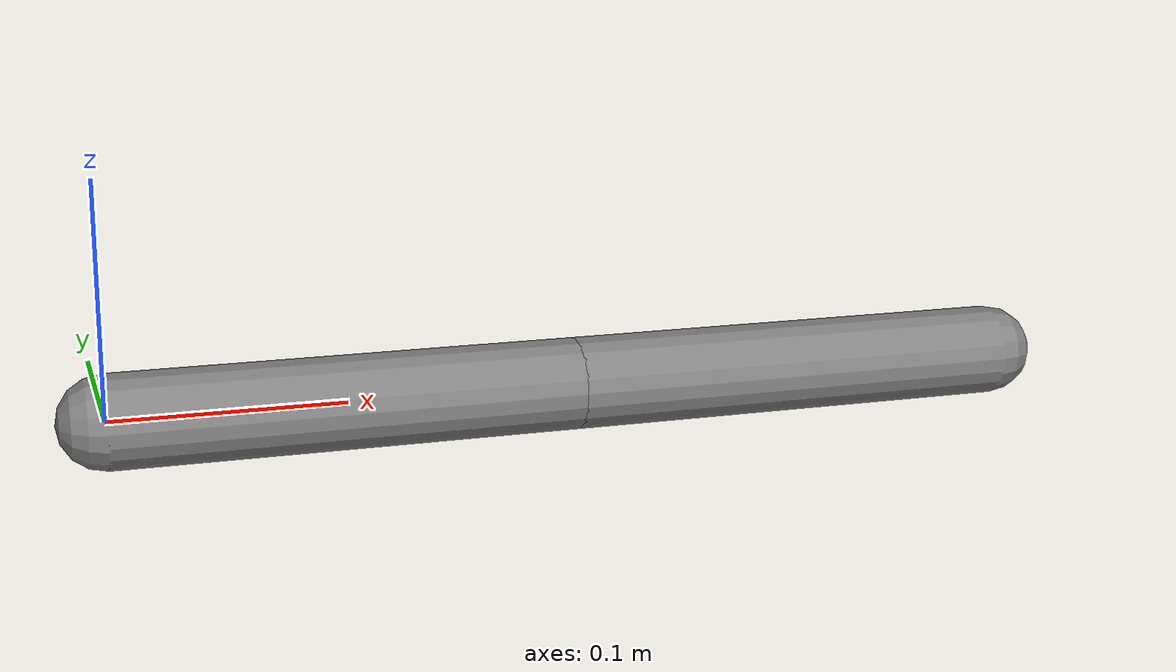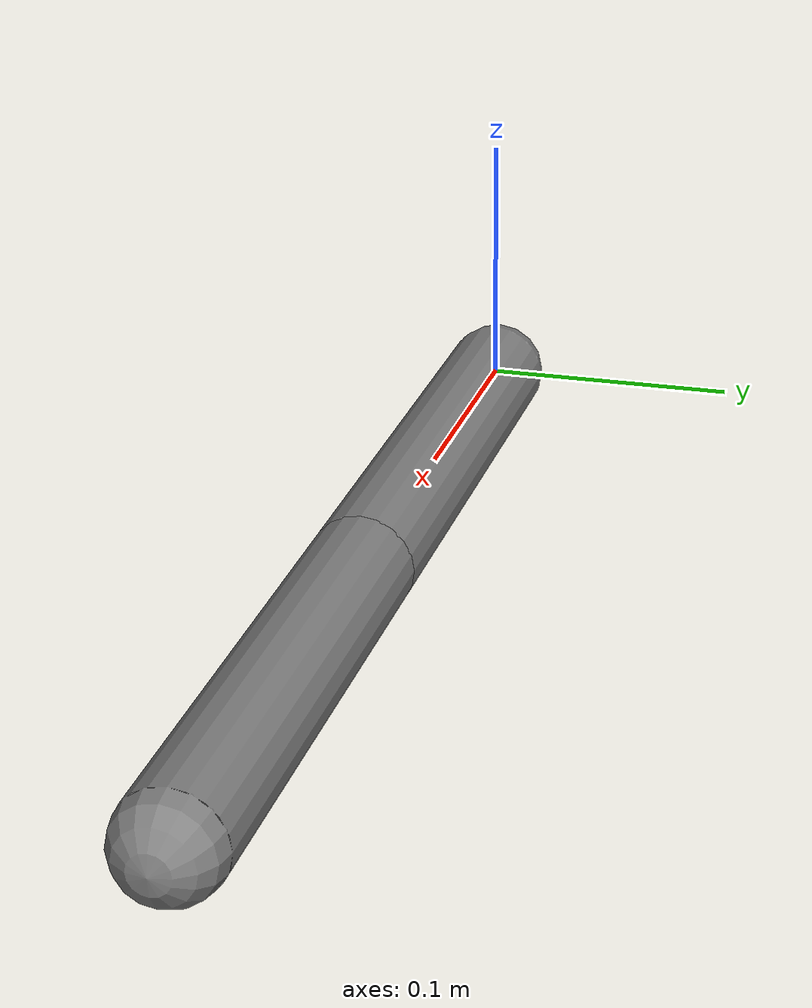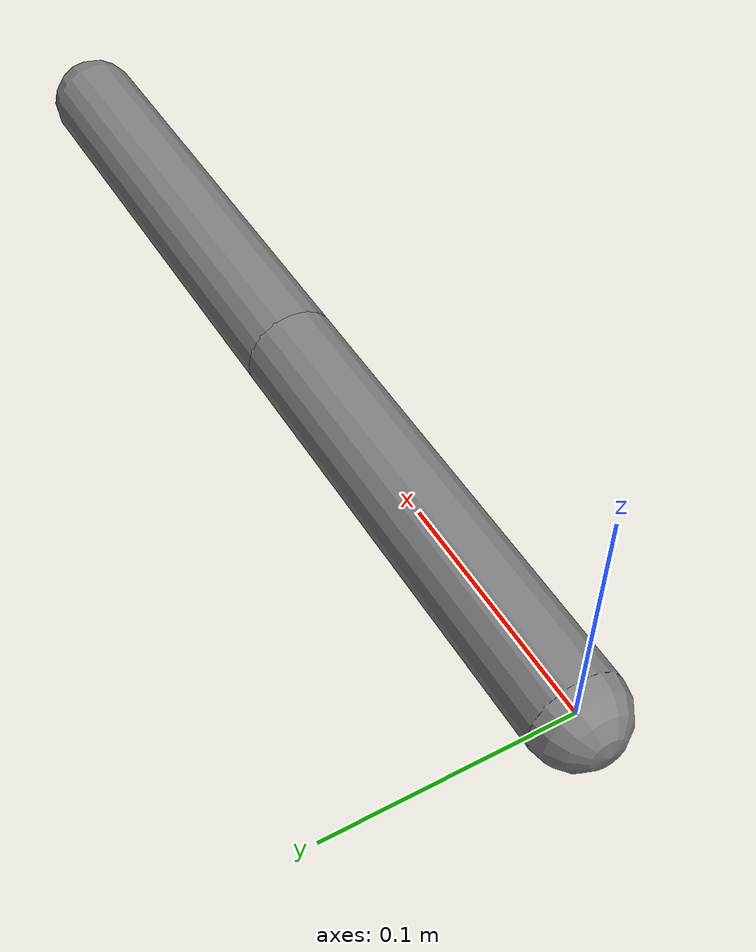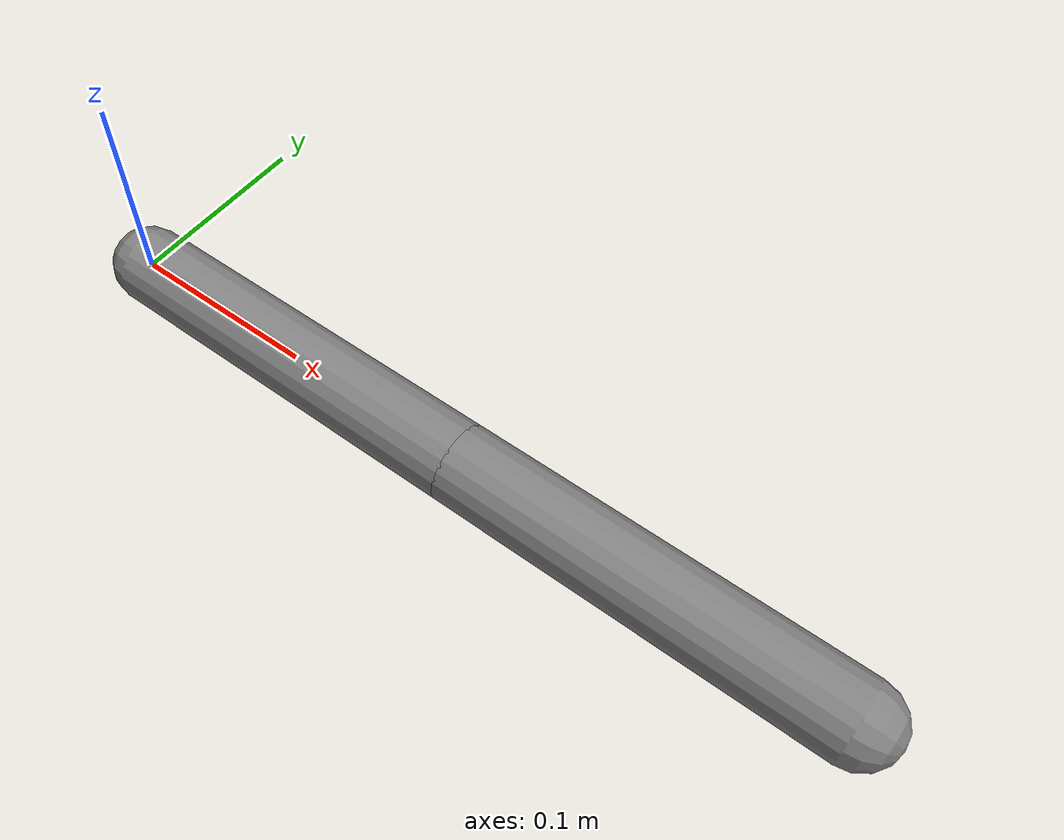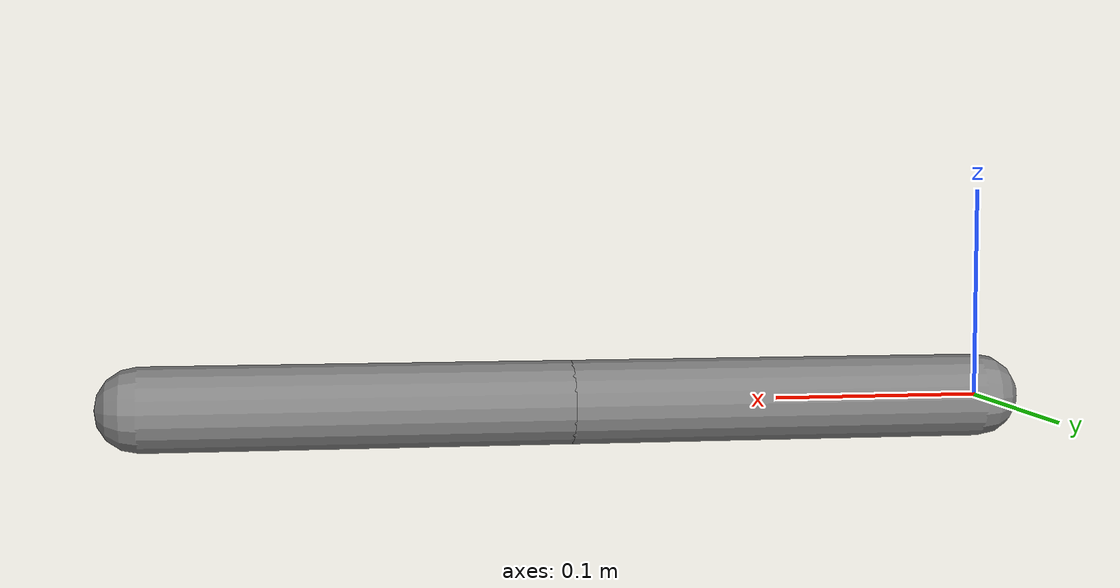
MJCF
<mujoco model="loop_ros_two_joint">
  <option timestep="0.002" gravity="0 0 0" integrator="implicitfast"/>
  <worldbody>
    <body name="link1">
      <joint name="j1" type="hinge" axis="0 0 1" range="-1 1" limited="true"/>
      <geom type="capsule" fromto="0 0 0 0.2 0 0" size="0.02" mass="0.2"/>
      <body name="link2" pos="0.2 0 0">
        <joint name="j2" type="hinge" axis="0 0 1" range="-1 1" limited="true"/>
        <geom type="capsule" fromto="0 0 0 0.2 0 0" size="0.02" mass="0.2"/>
        <site name="tip" pos="0.2 0 0"/>
      </body>
    </body>
  </worldbody>
  <compiler angle="radian"/>
  <actuator>
    <position name="a1" joint="j1" kp="20" kv="2" ctrlrange="-1 1"/>
    <position name="a2" joint="j2" kp="20" kv="2" ctrlrange="-1 1"/>
  </actuator>
</mujoco>
